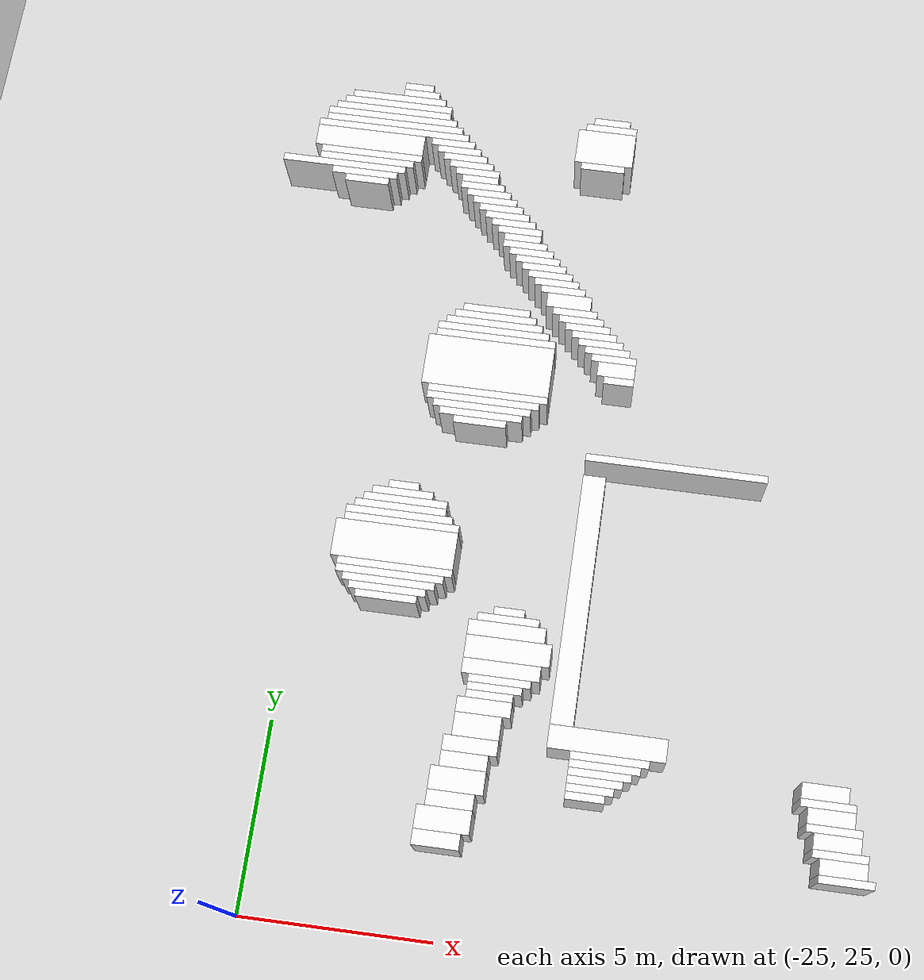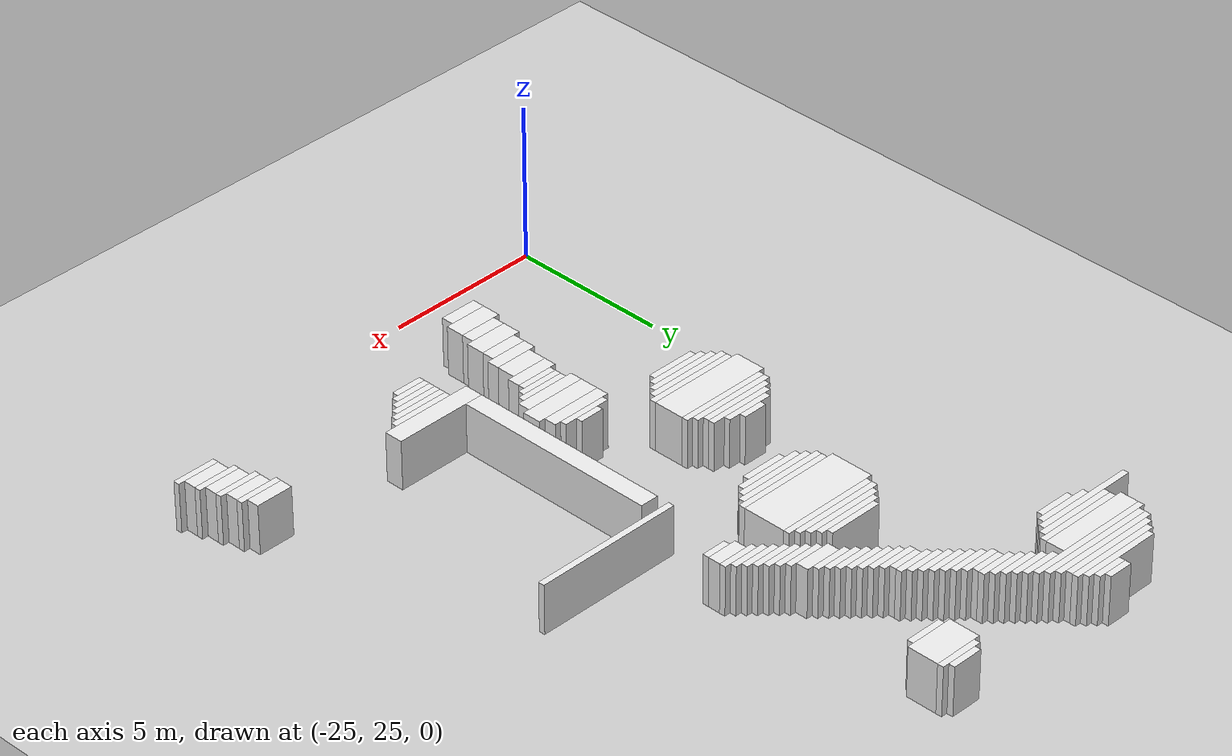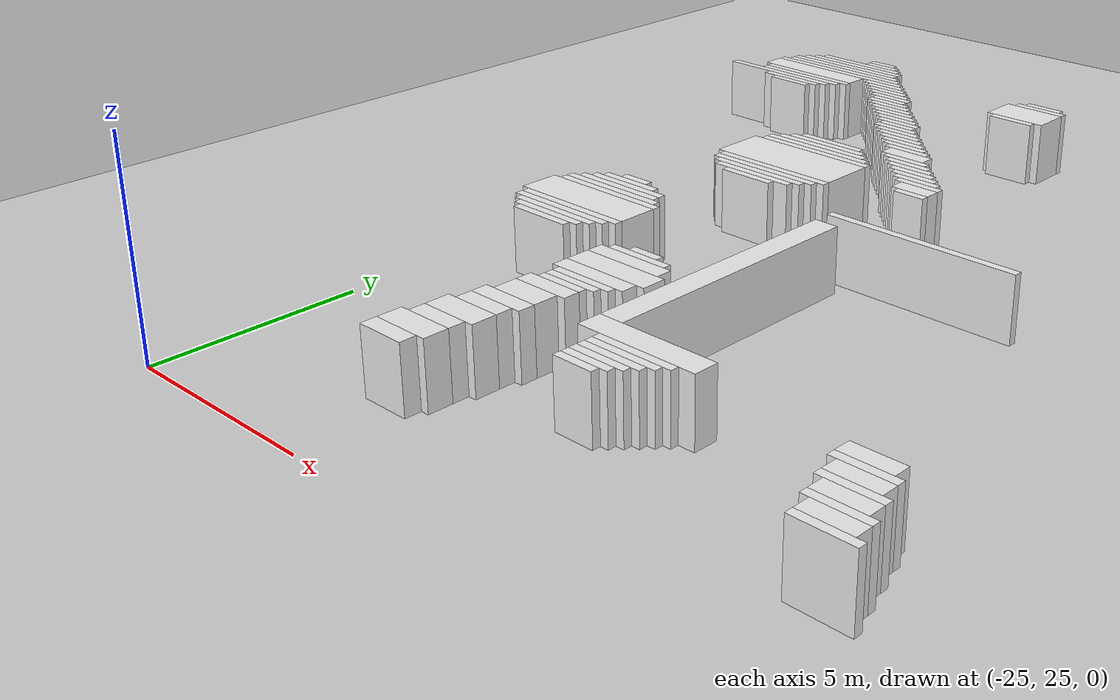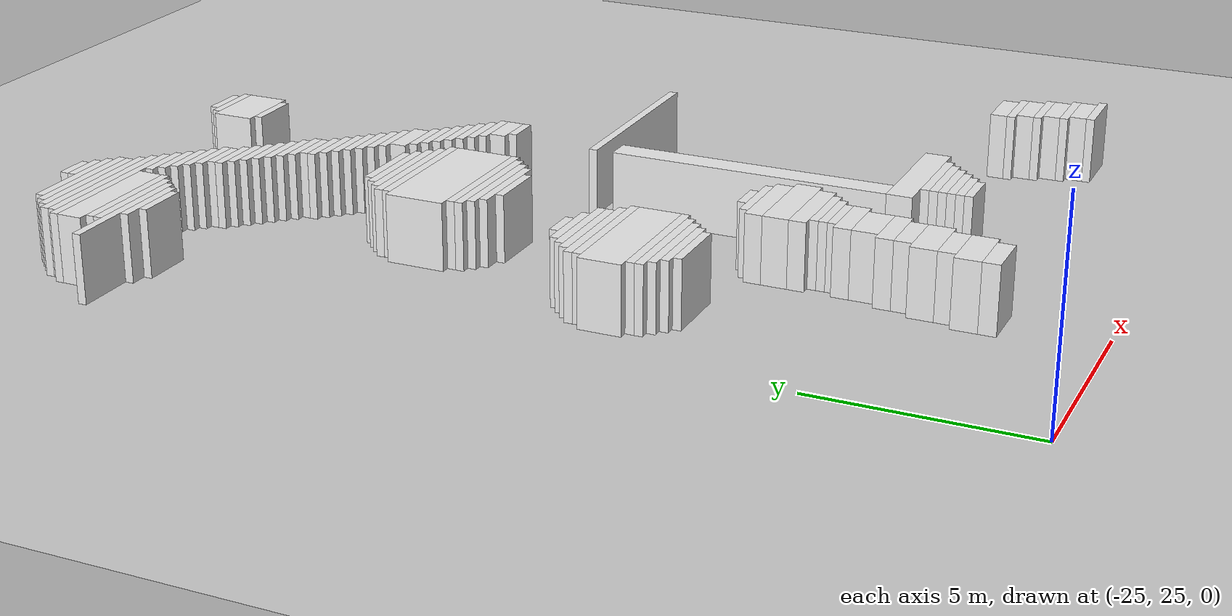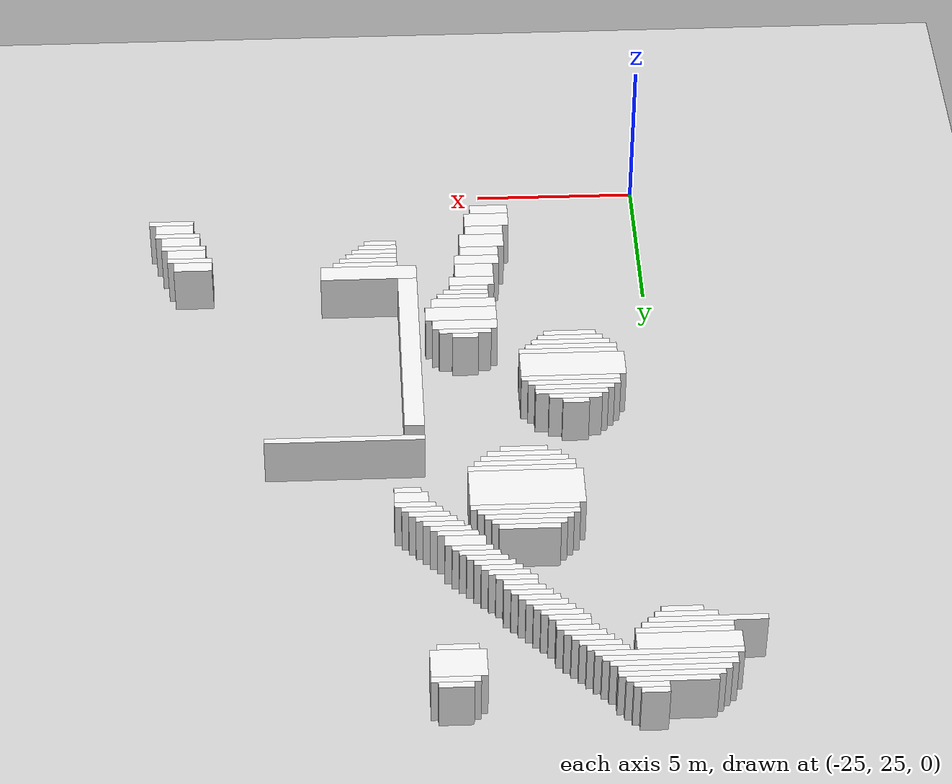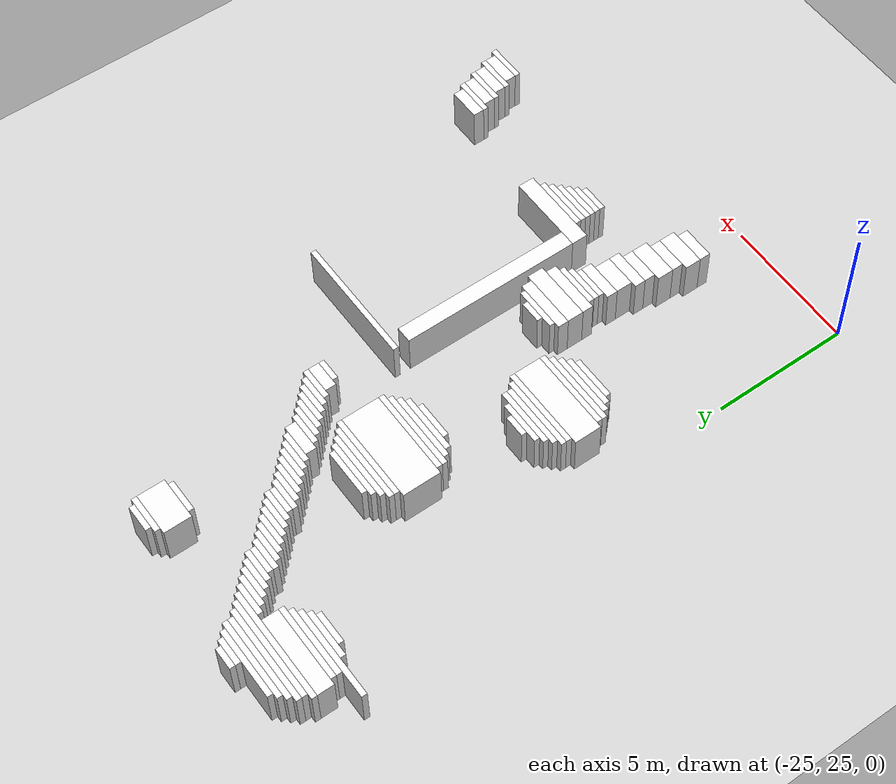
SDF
<sdf version="1.7">
 <world name="default">
  <model name="ground_plane">
   <static>1</static>
   <link name="link">
    <collision name="collision">
     <geometry><plane><normal>0 0 1</normal><size>120 120</size></plane></geometry>
    </collision>
    <visual name="visual">
     <geometry><plane><normal>0 0 1</normal><size>120 120</size></plane></geometry>
     <material>
      <script><uri>file://media/materials/scripts/gazebo.material</uri><name>Gazebo/Grey</name></script>
     </material>
    </visual>
   </link>
  </model>
  <model name="random_complex_02_model">
   <static>1</static>
   <link name="obs_13">
    <pose>-23.8000 47.9000 0.8000 0 0 0</pose>
    <collision name="obs_13_col"><geometry><box><size>0.8000 0.2000 1.6000</size></box></geometry></collision>
    <visual name="obs_13_vis">
     <geometry><box><size>0.8000 0.2000 1.6000</size></box></geometry>
     <material>
      <script><uri>file://media/materials/scripts/gazebo.material</uri><name>Gazebo/White</name></script>
     </material>
    </visual>
   </link>
   <link name="obs_20">
    <pose>-23.7000 47.7000 0.8000 0 0 0</pose>
    <collision name="obs_20_col"><geometry><box><size>1.0000 0.2000 1.6000</size></box></geometry></collision>
    <visual name="obs_20_vis">
     <geometry><box><size>1.0000 0.2000 1.6000</size></box></geometry>
     <material>
      <script><uri>file://media/materials/scripts/gazebo.material</uri><name>Gazebo/White</name></script>
     </material>
    </visual>
   </link>
   <link name="obs_27">
    <pose>-24.3000 47.5000 0.8000 0 0 0</pose>
    <collision name="obs_27_col"><geometry><box><size>2.6000 0.2000 1.6000</size></box></geometry></collision>
    <visual name="obs_27_vis">
     <geometry><box><size>2.6000 0.2000 1.6000</size></box></geometry>
     <material>
      <script><uri>file://media/materials/scripts/gazebo.material</uri><name>Gazebo/White</name></script>
     </material>
    </visual>
   </link>
   <link name="obs_28">
    <pose>-18.3000 47.5000 0.8000 0 0 0</pose>
    <collision name="obs_28_col"><geometry><box><size>1.0000 0.2000 1.6000</size></box></geometry></collision>
    <visual name="obs_28_vis">
     <geometry><box><size>1.0000 0.2000 1.6000</size></box></geometry>
     <material>
      <script><uri>file://media/materials/scripts/gazebo.material</uri><name>Gazebo/White</name></script>
     </material>
    </visual>
   </link>
   <link name="obs_34">
    <pose>-24.3000 47.3000 0.8000 0 0 0</pose>
    <collision name="obs_34_col"><geometry><box><size>3.0000 0.2000 1.6000</size></box></geometry></collision>
    <visual name="obs_34_vis">
     <geometry><box><size>3.0000 0.2000 1.6000</size></box></geometry>
     <material>
      <script><uri>file://media/materials/scripts/gazebo.material</uri><name>Gazebo/White</name></script>
     </material>
    </visual>
   </link>
   <link name="obs_35">
    <pose>-18.3000 47.3000 0.8000 0 0 0</pose>
    <collision name="obs_35_col"><geometry><box><size>1.4000 0.2000 1.6000</size></box></geometry></collision>
    <visual name="obs_35_vis">
     <geometry><box><size>1.4000 0.2000 1.6000</size></box></geometry>
     <material>
      <script><uri>file://media/materials/scripts/gazebo.material</uri><name>Gazebo/White</name></script>
     </material>
    </visual>
   </link>
   <link name="obs_42">
    <pose>-24.4000 47.1000 0.8000 0 0 0</pose>
    <collision name="obs_42_col"><geometry><box><size>3.2000 0.2000 1.6000</size></box></geometry></collision>
    <visual name="obs_42_vis">
     <geometry><box><size>3.2000 0.2000 1.6000</size></box></geometry>
     <material>
      <script><uri>file://media/materials/scripts/gazebo.material</uri><name>Gazebo/White</name></script>
     </material>
    </visual>
   </link>
   <link name="obs_48">
    <pose>-24.4000 46.9000 0.8000 0 0 0</pose>
    <collision name="obs_48_col"><geometry><box><size>3.6000 0.2000 1.6000</size></box></geometry></collision>
    <visual name="obs_48_vis">
     <geometry><box><size>3.6000 0.2000 1.6000</size></box></geometry>
     <material>
      <script><uri>file://media/materials/scripts/gazebo.material</uri><name>Gazebo/White</name></script>
     </material>
    </visual>
   </link>
   <link name="obs_55">
    <pose>-24.3000 46.7000 0.8000 0 0 0</pose>
    <collision name="obs_55_col"><geometry><box><size>3.8000 0.2000 1.6000</size></box></geometry></collision>
    <visual name="obs_55_vis">
     <geometry><box><size>3.8000 0.2000 1.6000</size></box></geometry>
     <material>
      <script><uri>file://media/materials/scripts/gazebo.material</uri><name>Gazebo/White</name></script>
     </material>
    </visual>
   </link>
   <link name="obs_62">
    <pose>-24.3000 46.5000 0.8000 0 0 0</pose>
    <collision name="obs_62_col"><geometry><box><size>4.2000 0.2000 1.6000</size></box></geometry></collision>
    <visual name="obs_62_vis">
     <geometry><box><size>4.2000 0.2000 1.6000</size></box></geometry>
     <material>
      <script><uri>file://media/materials/scripts/gazebo.material</uri><name>Gazebo/White</name></script>
     </material>
    </visual>
   </link>
   <link name="obs_67">
    <pose>-18.4000 46.7000 0.8000 0 0 0</pose>
    <collision name="obs_67_col"><geometry><box><size>1.6000 1.0000 1.6000</size></box></geometry></collision>
    <visual name="obs_67_vis">
     <geometry><box><size>1.6000 1.0000 1.6000</size></box></geometry>
     <material>
      <script><uri>file://media/materials/scripts/gazebo.material</uri><name>Gazebo/White</name></script>
     </material>
    </visual>
   </link>
   <link name="obs_70">
    <pose>-22.6000 46.3000 0.8000 0 0 0</pose>
    <collision name="obs_70_col"><geometry><box><size>1.2000 0.2000 1.6000</size></box></geometry></collision>
    <visual name="obs_70_vis">
     <geometry><box><size>1.2000 0.2000 1.6000</size></box></geometry>
     <material>
      <script><uri>file://media/materials/scripts/gazebo.material</uri><name>Gazebo/White</name></script>
     </material>
    </visual>
   </link>
   <link name="obs_78">
    <pose>-22.4000 46.1000 0.8000 0 0 0</pose>
    <collision name="obs_78_col"><geometry><box><size>1.2000 0.2000 1.6000</size></box></geometry></collision>
    <visual name="obs_78_vis">
     <geometry><box><size>1.2000 0.2000 1.6000</size></box></geometry>
     <material>
      <script><uri>file://media/materials/scripts/gazebo.material</uri><name>Gazebo/White</name></script>
     </material>
    </visual>
   </link>
   <link name="obs_79">
    <pose>-18.4000 46.1000 0.8000 0 0 0</pose>
    <collision name="obs_79_col"><geometry><box><size>1.2000 0.2000 1.6000</size></box></geometry></collision>
    <visual name="obs_79_vis">
     <geometry><box><size>1.2000 0.2000 1.6000</size></box></geometry>
     <material>
      <script><uri>file://media/materials/scripts/gazebo.material</uri><name>Gazebo/White</name></script>
     </material>
    </visual>
   </link>
   <link name="obs_83">
    <pose>-24.9000 46.1000 0.8000 0 0 0</pose>
    <collision name="obs_83_col"><geometry><box><size>3.0000 0.6000 1.6000</size></box></geometry></collision>
    <visual name="obs_83_vis">
     <geometry><box><size>3.0000 0.6000 1.6000</size></box></geometry>
     <material>
      <script><uri>file://media/materials/scripts/gazebo.material</uri><name>Gazebo/White</name></script>
     </material>
    </visual>
   </link>
   <link name="obs_87">
    <pose>-22.2000 45.9000 0.8000 0 0 0</pose>
    <collision name="obs_87_col"><geometry><box><size>1.2000 0.2000 1.6000</size></box></geometry></collision>
    <visual name="obs_87_vis">
     <geometry><box><size>1.2000 0.2000 1.6000</size></box></geometry>
     <material>
      <script><uri>file://media/materials/scripts/gazebo.material</uri><name>Gazebo/White</name></script>
     </material>
    </visual>
   </link>
   <link name="obs_93">
    <pose>-24.8000 45.7000 0.8000 0 0 0</pose>
    <collision name="obs_93_col"><geometry><box><size>2.8000 0.2000 1.6000</size></box></geometry></collision>
    <visual name="obs_93_vis">
     <geometry><box><size>2.8000 0.2000 1.6000</size></box></geometry>
     <material>
      <script><uri>file://media/materials/scripts/gazebo.material</uri><name>Gazebo/White</name></script>
     </material>
    </visual>
   </link>
   <link name="obs_94">
    <pose>-22.0000 45.7000 0.8000 0 0 0</pose>
    <collision name="obs_94_col"><geometry><box><size>1.2000 0.2000 1.6000</size></box></geometry></collision>
    <visual name="obs_94_vis">
     <geometry><box><size>1.2000 0.2000 1.6000</size></box></geometry>
     <material>
      <script><uri>file://media/materials/scripts/gazebo.material</uri><name>Gazebo/White</name></script>
     </material>
    </visual>
   </link>
   <link name="obs_100">
    <pose>-24.9000 45.5000 0.8000 0 0 0</pose>
    <collision name="obs_100_col"><geometry><box><size>2.6000 0.2000 1.6000</size></box></geometry></collision>
    <visual name="obs_100_vis">
     <geometry><box><size>2.6000 0.2000 1.6000</size></box></geometry>
     <material>
      <script><uri>file://media/materials/scripts/gazebo.material</uri><name>Gazebo/White</name></script>
     </material>
    </visual>
   </link>
   <link name="obs_101">
    <pose>-21.8000 45.5000 0.8000 0 0 0</pose>
    <collision name="obs_101_col"><geometry><box><size>1.2000 0.2000 1.6000</size></box></geometry></collision>
    <visual name="obs_101_vis">
     <geometry><box><size>1.2000 0.2000 1.6000</size></box></geometry>
     <material>
      <script><uri>file://media/materials/scripts/gazebo.material</uri><name>Gazebo/White</name></script>
     </material>
    </visual>
   </link>
   <link name="obs_109">
    <pose>-25.5000 45.3000 0.8000 0 0 0</pose>
    <collision name="obs_109_col"><geometry><box><size>3.4000 0.2000 1.6000</size></box></geometry></collision>
    <visual name="obs_109_vis">
     <geometry><box><size>3.4000 0.2000 1.6000</size></box></geometry>
     <material>
      <script><uri>file://media/materials/scripts/gazebo.material</uri><name>Gazebo/White</name></script>
     </material>
    </visual>
   </link>
   <link name="obs_110">
    <pose>-21.7000 45.3000 0.8000 0 0 0</pose>
    <collision name="obs_110_col"><geometry><box><size>1.0000 0.2000 1.6000</size></box></geometry></collision>
    <visual name="obs_110_vis">
     <geometry><box><size>1.0000 0.2000 1.6000</size></box></geometry>
     <material>
      <script><uri>file://media/materials/scripts/gazebo.material</uri><name>Gazebo/White</name></script>
     </material>
    </visual>
   </link>
   <link name="obs_120">
    <pose>-24.9000 45.1000 0.8000 0 0 0</pose>
    <collision name="obs_120_col"><geometry><box><size>1.8000 0.2000 1.6000</size></box></geometry></collision>
    <visual name="obs_120_vis">
     <geometry><box><size>1.8000 0.2000 1.6000</size></box></geometry>
     <material>
      <script><uri>file://media/materials/scripts/gazebo.material</uri><name>Gazebo/White</name></script>
     </material>
    </visual>
   </link>
   <link name="obs_121">
    <pose>-21.6000 45.1000 0.8000 0 0 0</pose>
    <collision name="obs_121_col"><geometry><box><size>1.2000 0.2000 1.6000</size></box></geometry></collision>
    <visual name="obs_121_vis">
     <geometry><box><size>1.2000 0.2000 1.6000</size></box></geometry>
     <material>
      <script><uri>file://media/materials/scripts/gazebo.material</uri><name>Gazebo/White</name></script>
     </material>
    </visual>
   </link>
   <link name="obs_129">
    <pose>-24.8000 44.9000 0.8000 0 0 0</pose>
    <collision name="obs_129_col"><geometry><box><size>1.2000 0.2000 1.6000</size></box></geometry></collision>
    <visual name="obs_129_vis">
     <geometry><box><size>1.2000 0.2000 1.6000</size></box></geometry>
     <material>
      <script><uri>file://media/materials/scripts/gazebo.material</uri><name>Gazebo/White</name></script>
     </material>
    </visual>
   </link>
   <link name="obs_130">
    <pose>-21.4000 44.9000 0.8000 0 0 0</pose>
    <collision name="obs_130_col"><geometry><box><size>1.2000 0.2000 1.6000</size></box></geometry></collision>
    <visual name="obs_130_vis">
     <geometry><box><size>1.2000 0.2000 1.6000</size></box></geometry>
     <material>
      <script><uri>file://media/materials/scripts/gazebo.material</uri><name>Gazebo/White</name></script>
     </material>
    </visual>
   </link>
   <link name="obs_138">
    <pose>-21.2000 44.7000 0.8000 0 0 0</pose>
    <collision name="obs_138_col"><geometry><box><size>1.2000 0.2000 1.6000</size></box></geometry></collision>
    <visual name="obs_138_vis">
     <geometry><box><size>1.2000 0.2000 1.6000</size></box></geometry>
     <material>
      <script><uri>file://media/materials/scripts/gazebo.material</uri><name>Gazebo/White</name></script>
     </material>
    </visual>
   </link>
   <link name="obs_146">
    <pose>-21.0000 44.5000 0.8000 0 0 0</pose>
    <collision name="obs_146_col"><geometry><box><size>1.2000 0.2000 1.6000</size></box></geometry></collision>
    <visual name="obs_146_vis">
     <geometry><box><size>1.2000 0.2000 1.6000</size></box></geometry>
     <material>
      <script><uri>file://media/materials/scripts/gazebo.material</uri><name>Gazebo/White</name></script>
     </material>
    </visual>
   </link>
   <link name="obs_153">
    <pose>-20.8000 44.3000 0.8000 0 0 0</pose>
    <collision name="obs_153_col"><geometry><box><size>1.2000 0.2000 1.6000</size></box></geometry></collision>
    <visual name="obs_153_vis">
     <geometry><box><size>1.2000 0.2000 1.6000</size></box></geometry>
     <material>
      <script><uri>file://media/materials/scripts/gazebo.material</uri><name>Gazebo/White</name></script>
     </material>
    </visual>
   </link>
   <link name="obs_162">
    <pose>-20.6000 44.1000 0.8000 0 0 0</pose>
    <collision name="obs_162_col"><geometry><box><size>1.2000 0.2000 1.6000</size></box></geometry></collision>
    <visual name="obs_162_vis">
     <geometry><box><size>1.2000 0.2000 1.6000</size></box></geometry>
     <material>
      <script><uri>file://media/materials/scripts/gazebo.material</uri><name>Gazebo/White</name></script>
     </material>
    </visual>
   </link>
   <link name="obs_170">
    <pose>-20.4000 43.9000 0.8000 0 0 0</pose>
    <collision name="obs_170_col"><geometry><box><size>1.2000 0.2000 1.6000</size></box></geometry></collision>
    <visual name="obs_170_vis">
     <geometry><box><size>1.2000 0.2000 1.6000</size></box></geometry>
     <material>
      <script><uri>file://media/materials/scripts/gazebo.material</uri><name>Gazebo/White</name></script>
     </material>
    </visual>
   </link>
   <link name="obs_177">
    <pose>-20.3000 43.7000 0.8000 0 0 0</pose>
    <collision name="obs_177_col"><geometry><box><size>1.0000 0.2000 1.6000</size></box></geometry></collision>
    <visual name="obs_177_vis">
     <geometry><box><size>1.0000 0.2000 1.6000</size></box></geometry>
     <material>
      <script><uri>file://media/materials/scripts/gazebo.material</uri><name>Gazebo/White</name></script>
     </material>
    </visual>
   </link>
   <link name="obs_182">
    <pose>-20.2000 43.5000 0.8000 0 0 0</pose>
    <collision name="obs_182_col"><geometry><box><size>1.2000 0.2000 1.6000</size></box></geometry></collision>
    <visual name="obs_182_vis">
     <geometry><box><size>1.2000 0.2000 1.6000</size></box></geometry>
     <material>
      <script><uri>file://media/materials/scripts/gazebo.material</uri><name>Gazebo/White</name></script>
     </material>
    </visual>
   </link>
   <link name="obs_189">
    <pose>-20.0000 43.3000 0.8000 0 0 0</pose>
    <collision name="obs_189_col"><geometry><box><size>1.2000 0.2000 1.6000</size></box></geometry></collision>
    <visual name="obs_189_vis">
     <geometry><box><size>1.2000 0.2000 1.6000</size></box></geometry>
     <material>
      <script><uri>file://media/materials/scripts/gazebo.material</uri><name>Gazebo/White</name></script>
     </material>
    </visual>
   </link>
   <link name="obs_197">
    <pose>-19.8000 43.1000 0.8000 0 0 0</pose>
    <collision name="obs_197_col"><geometry><box><size>1.2000 0.2000 1.6000</size></box></geometry></collision>
    <visual name="obs_197_vis">
     <geometry><box><size>1.2000 0.2000 1.6000</size></box></geometry>
     <material>
      <script><uri>file://media/materials/scripts/gazebo.material</uri><name>Gazebo/White</name></script>
     </material>
    </visual>
   </link>
   <link name="obs_204">
    <pose>-19.6000 42.9000 0.8000 0 0 0</pose>
    <collision name="obs_204_col"><geometry><box><size>1.2000 0.2000 1.6000</size></box></geometry></collision>
    <visual name="obs_204_vis">
     <geometry><box><size>1.2000 0.2000 1.6000</size></box></geometry>
     <material>
      <script><uri>file://media/materials/scripts/gazebo.material</uri><name>Gazebo/White</name></script>
     </material>
    </visual>
   </link>
   <link name="obs_211">
    <pose>-19.4000 42.7000 0.8000 0 0 0</pose>
    <collision name="obs_211_col"><geometry><box><size>1.2000 0.2000 1.6000</size></box></geometry></collision>
    <visual name="obs_211_vis">
     <geometry><box><size>1.2000 0.2000 1.6000</size></box></geometry>
     <material>
      <script><uri>file://media/materials/scripts/gazebo.material</uri><name>Gazebo/White</name></script>
     </material>
    </visual>
   </link>
   <link name="obs_219">
    <pose>-19.2000 42.5000 0.8000 0 0 0</pose>
    <collision name="obs_219_col"><geometry><box><size>1.2000 0.2000 1.6000</size></box></geometry></collision>
    <visual name="obs_219_vis">
     <geometry><box><size>1.2000 0.2000 1.6000</size></box></geometry>
     <material>
      <script><uri>file://media/materials/scripts/gazebo.material</uri><name>Gazebo/White</name></script>
     </material>
    </visual>
   </link>
   <link name="obs_224">
    <pose>-19.0000 42.3000 0.8000 0 0 0</pose>
    <collision name="obs_224_col"><geometry><box><size>1.2000 0.2000 1.6000</size></box></geometry></collision>
    <visual name="obs_224_vis">
     <geometry><box><size>1.2000 0.2000 1.6000</size></box></geometry>
     <material>
      <script><uri>file://media/materials/scripts/gazebo.material</uri><name>Gazebo/White</name></script>
     </material>
    </visual>
   </link>
   <link name="obs_235">
    <pose>-18.8000 42.0000 0.8000 0 0 0</pose>
    <collision name="obs_235_col"><geometry><box><size>1.2000 0.4000 1.6000</size></box></geometry></collision>
    <visual name="obs_235_vis">
     <geometry><box><size>1.2000 0.4000 1.6000</size></box></geometry>
     <material>
      <script><uri>file://media/materials/scripts/gazebo.material</uri><name>Gazebo/White</name></script>
     </material>
    </visual>
   </link>
   <link name="obs_244">
    <pose>-18.6000 41.7000 0.8000 0 0 0</pose>
    <collision name="obs_244_col"><geometry><box><size>1.2000 0.2000 1.6000</size></box></geometry></collision>
    <visual name="obs_244_vis">
     <geometry><box><size>1.2000 0.2000 1.6000</size></box></geometry>
     <material>
      <script><uri>file://media/materials/scripts/gazebo.material</uri><name>Gazebo/White</name></script>
     </material>
    </visual>
   </link>
   <link name="obs_255">
    <pose>-20.7000 41.5000 0.8000 0 0 0</pose>
    <collision name="obs_255_col"><geometry><box><size>1.8000 0.2000 1.6000</size></box></geometry></collision>
    <visual name="obs_255_vis">
     <geometry><box><size>1.8000 0.2000 1.6000</size></box></geometry>
     <material>
      <script><uri>file://media/materials/scripts/gazebo.material</uri><name>Gazebo/White</name></script>
     </material>
    </visual>
   </link>
   <link name="obs_256">
    <pose>-18.4000 41.5000 0.8000 0 0 0</pose>
    <collision name="obs_256_col"><geometry><box><size>1.2000 0.2000 1.6000</size></box></geometry></collision>
    <visual name="obs_256_vis">
     <geometry><box><size>1.2000 0.2000 1.6000</size></box></geometry>
     <material>
      <script><uri>file://media/materials/scripts/gazebo.material</uri><name>Gazebo/White</name></script>
     </material>
    </visual>
   </link>
   <link name="obs_264">
    <pose>-20.7000 41.3000 0.8000 0 0 0</pose>
    <collision name="obs_264_col"><geometry><box><size>2.2000 0.2000 1.6000</size></box></geometry></collision>
    <visual name="obs_264_vis">
     <geometry><box><size>2.2000 0.2000 1.6000</size></box></geometry>
     <material>
      <script><uri>file://media/materials/scripts/gazebo.material</uri><name>Gazebo/White</name></script>
     </material>
    </visual>
   </link>
   <link name="obs_265">
    <pose>-18.2000 41.3000 0.8000 0 0 0</pose>
    <collision name="obs_265_col"><geometry><box><size>1.2000 0.2000 1.6000</size></box></geometry></collision>
    <visual name="obs_265_vis">
     <geometry><box><size>1.2000 0.2000 1.6000</size></box></geometry>
     <material>
      <script><uri>file://media/materials/scripts/gazebo.material</uri><name>Gazebo/White</name></script>
     </material>
    </visual>
   </link>
   <link name="obs_272">
    <pose>-20.7000 41.1000 0.8000 0 0 0</pose>
    <collision name="obs_272_col"><geometry><box><size>2.6000 0.2000 1.6000</size></box></geometry></collision>
    <visual name="obs_272_vis">
     <geometry><box><size>2.6000 0.2000 1.6000</size></box></geometry>
     <material>
      <script><uri>file://media/materials/scripts/gazebo.material</uri><name>Gazebo/White</name></script>
     </material>
    </visual>
   </link>
   <link name="obs_273">
    <pose>-18.0000 41.1000 0.8000 0 0 0</pose>
    <collision name="obs_273_col"><geometry><box><size>1.2000 0.2000 1.6000</size></box></geometry></collision>
    <visual name="obs_273_vis">
     <geometry><box><size>1.2000 0.2000 1.6000</size></box></geometry>
     <material>
      <script><uri>file://media/materials/scripts/gazebo.material</uri><name>Gazebo/White</name></script>
     </material>
    </visual>
   </link>
   <link name="obs_281">
    <pose>-20.7000 40.9000 0.8000 0 0 0</pose>
    <collision name="obs_281_col"><geometry><box><size>3.0000 0.2000 1.6000</size></box></geometry></collision>
    <visual name="obs_281_vis">
     <geometry><box><size>3.0000 0.2000 1.6000</size></box></geometry>
     <material>
      <script><uri>file://media/materials/scripts/gazebo.material</uri><name>Gazebo/White</name></script>
     </material>
    </visual>
   </link>
   <link name="obs_282">
    <pose>-17.8000 40.9000 0.8000 0 0 0</pose>
    <collision name="obs_282_col"><geometry><box><size>1.2000 0.2000 1.6000</size></box></geometry></collision>
    <visual name="obs_282_vis">
     <geometry><box><size>1.2000 0.2000 1.6000</size></box></geometry>
     <material>
      <script><uri>file://media/materials/scripts/gazebo.material</uri><name>Gazebo/White</name></script>
     </material>
    </visual>
   </link>
   <link name="obs_291">
    <pose>-20.6000 40.7000 0.8000 0 0 0</pose>
    <collision name="obs_291_col"><geometry><box><size>3.2000 0.2000 1.6000</size></box></geometry></collision>
    <visual name="obs_291_vis">
     <geometry><box><size>3.2000 0.2000 1.6000</size></box></geometry>
     <material>
      <script><uri>file://media/materials/scripts/gazebo.material</uri><name>Gazebo/White</name></script>
     </material>
    </visual>
   </link>
   <link name="obs_292">
    <pose>-17.6000 40.7000 0.8000 0 0 0</pose>
    <collision name="obs_292_col"><geometry><box><size>1.2000 0.2000 1.6000</size></box></geometry></collision>
    <visual name="obs_292_vis">
     <geometry><box><size>1.2000 0.2000 1.6000</size></box></geometry>
     <material>
      <script><uri>file://media/materials/scripts/gazebo.material</uri><name>Gazebo/White</name></script>
     </material>
    </visual>
   </link>
   <link name="obs_302">
    <pose>-17.4000 40.5000 0.8000 0 0 0</pose>
    <collision name="obs_302_col"><geometry><box><size>1.2000 0.2000 1.6000</size></box></geometry></collision>
    <visual name="obs_302_vis">
     <geometry><box><size>1.2000 0.2000 1.6000</size></box></geometry>
     <material>
      <script><uri>file://media/materials/scripts/gazebo.material</uri><name>Gazebo/White</name></script>
     </material>
    </visual>
   </link>
   <link name="obs_320">
    <pose>-17.3000 40.2000 0.8000 0 0 0</pose>
    <collision name="obs_320_col"><geometry><box><size>1.0000 0.4000 1.6000</size></box></geometry></collision>
    <visual name="obs_320_vis">
     <geometry><box><size>1.0000 0.4000 1.6000</size></box></geometry>
     <material>
      <script><uri>file://media/materials/scripts/gazebo.material</uri><name>Gazebo/White</name></script>
     </material>
    </visual>
   </link>
   <link name="obs_333">
    <pose>-17.2000 39.9000 0.8000 0 0 0</pose>
    <collision name="obs_333_col"><geometry><box><size>0.8000 0.2000 1.6000</size></box></geometry></collision>
    <visual name="obs_333_vis">
     <geometry><box><size>0.8000 0.2000 1.6000</size></box></geometry>
     <material>
      <script><uri>file://media/materials/scripts/gazebo.material</uri><name>Gazebo/White</name></script>
     </material>
    </visual>
   </link>
   <link name="obs_351">
    <pose>-20.7000 39.9000 0.8000 0 0 0</pose>
    <collision name="obs_351_col"><geometry><box><size>3.4000 1.4000 1.6000</size></box></geometry></collision>
    <visual name="obs_351_vis">
     <geometry><box><size>3.4000 1.4000 1.6000</size></box></geometry>
     <material>
      <script><uri>file://media/materials/scripts/gazebo.material</uri><name>Gazebo/White</name></script>
     </material>
    </visual>
   </link>
   <link name="obs_364">
    <pose>-20.6000 39.1000 0.8000 0 0 0</pose>
    <collision name="obs_364_col"><geometry><box><size>3.2000 0.2000 1.6000</size></box></geometry></collision>
    <visual name="obs_364_vis">
     <geometry><box><size>3.2000 0.2000 1.6000</size></box></geometry>
     <material>
      <script><uri>file://media/materials/scripts/gazebo.material</uri><name>Gazebo/White</name></script>
     </material>
    </visual>
   </link>
   <link name="obs_374">
    <pose>-20.7000 38.9000 0.8000 0 0 0</pose>
    <collision name="obs_374_col"><geometry><box><size>3.0000 0.2000 1.6000</size></box></geometry></collision>
    <visual name="obs_374_vis">
     <geometry><box><size>3.0000 0.2000 1.6000</size></box></geometry>
     <material>
      <script><uri>file://media/materials/scripts/gazebo.material</uri><name>Gazebo/White</name></script>
     </material>
    </visual>
   </link>
   <link name="obs_383">
    <pose>-20.7000 38.7000 0.8000 0 0 0</pose>
    <collision name="obs_383_col"><geometry><box><size>2.6000 0.2000 1.6000</size></box></geometry></collision>
    <visual name="obs_383_vis">
     <geometry><box><size>2.6000 0.2000 1.6000</size></box></geometry>
     <material>
      <script><uri>file://media/materials/scripts/gazebo.material</uri><name>Gazebo/White</name></script>
     </material>
    </visual>
   </link>
   <link name="obs_392">
    <pose>-20.7000 38.5000 0.8000 0 0 0</pose>
    <collision name="obs_392_col"><geometry><box><size>2.2000 0.2000 1.6000</size></box></geometry></collision>
    <visual name="obs_392_vis">
     <geometry><box><size>2.2000 0.2000 1.6000</size></box></geometry>
     <material>
      <script><uri>file://media/materials/scripts/gazebo.material</uri><name>Gazebo/White</name></script>
     </material>
    </visual>
   </link>
   <link name="obs_404">
    <pose>-20.7000 38.3000 0.8000 0 0 0</pose>
    <collision name="obs_404_col"><geometry><box><size>1.4000 0.2000 1.6000</size></box></geometry></collision>
    <visual name="obs_404_vis">
     <geometry><box><size>1.4000 0.2000 1.6000</size></box></geometry>
     <material>
      <script><uri>file://media/materials/scripts/gazebo.material</uri><name>Gazebo/White</name></script>
     </material>
    </visual>
   </link>
   <link name="obs_431">
    <pose>-15.4000 37.7000 0.8000 0 0 0</pose>
    <collision name="obs_431_col"><geometry><box><size>4.8000 0.2000 1.6000</size></box></geometry></collision>
    <visual name="obs_431_vis">
     <geometry><box><size>4.8000 0.2000 1.6000</size></box></geometry>
     <material>
      <script><uri>file://media/materials/scripts/gazebo.material</uri><name>Gazebo/White</name></script>
     </material>
    </visual>
   </link>
   <link name="obs_482">
    <pose>-22.4000 36.3000 0.8000 0 0 0</pose>
    <collision name="obs_482_col"><geometry><box><size>0.8000 0.2000 1.6000</size></box></geometry></collision>
    <visual name="obs_482_vis">
     <geometry><box><size>0.8000 0.2000 1.6000</size></box></geometry>
     <material>
      <script><uri>file://media/materials/scripts/gazebo.material</uri><name>Gazebo/White</name></script>
     </material>
    </visual>
   </link>
   <link name="obs_492">
    <pose>-22.4000 36.1000 0.8000 0 0 0</pose>
    <collision name="obs_492_col"><geometry><box><size>1.6000 0.2000 1.6000</size></box></geometry></collision>
    <visual name="obs_492_vis">
     <geometry><box><size>1.6000 0.2000 1.6000</size></box></geometry>
     <material>
      <script><uri>file://media/materials/scripts/gazebo.material</uri><name>Gazebo/White</name></script>
     </material>
    </visual>
   </link>
   <link name="obs_502">
    <pose>-22.3000 35.9000 0.8000 0 0 0</pose>
    <collision name="obs_502_col"><geometry><box><size>2.2000 0.2000 1.6000</size></box></geometry></collision>
    <visual name="obs_502_vis">
     <geometry><box><size>2.2000 0.2000 1.6000</size></box></geometry>
     <material>
      <script><uri>file://media/materials/scripts/gazebo.material</uri><name>Gazebo/White</name></script>
     </material>
    </visual>
   </link>
   <link name="obs_513">
    <pose>-22.4000 35.7000 0.8000 0 0 0</pose>
    <collision name="obs_513_col"><geometry><box><size>2.4000 0.2000 1.6000</size></box></geometry></collision>
    <visual name="obs_513_vis">
     <geometry><box><size>2.4000 0.2000 1.6000</size></box></geometry>
     <material>
      <script><uri>file://media/materials/scripts/gazebo.material</uri><name>Gazebo/White</name></script>
     </material>
    </visual>
   </link>
   <link name="obs_519">
    <pose>-22.4000 35.5000 0.8000 0 0 0</pose>
    <collision name="obs_519_col"><geometry><box><size>2.8000 0.2000 1.6000</size></box></geometry></collision>
    <visual name="obs_519_vis">
     <geometry><box><size>2.8000 0.2000 1.6000</size></box></geometry>
     <material>
      <script><uri>file://media/materials/scripts/gazebo.material</uri><name>Gazebo/White</name></script>
     </material>
    </visual>
   </link>
   <link name="obs_530">
    <pose>-22.3000 35.3000 0.8000 0 0 0</pose>
    <collision name="obs_530_col"><geometry><box><size>3.0000 0.2000 1.6000</size></box></geometry></collision>
    <visual name="obs_530_vis">
     <geometry><box><size>3.0000 0.2000 1.6000</size></box></geometry>
     <material>
      <script><uri>file://media/materials/scripts/gazebo.material</uri><name>Gazebo/White</name></script>
     </material>
    </visual>
   </link>
   <link name="obs_571">
    <pose>-22.4000 34.7000 0.8000 0 0 0</pose>
    <collision name="obs_571_col"><geometry><box><size>3.2000 1.0000 1.6000</size></box></geometry></collision>
    <visual name="obs_571_vis">
     <geometry><box><size>3.2000 1.0000 1.6000</size></box></geometry>
     <material>
      <script><uri>file://media/materials/scripts/gazebo.material</uri><name>Gazebo/White</name></script>
     </material>
    </visual>
   </link>
   <link name="obs_582">
    <pose>-22.3000 34.1000 0.8000 0 0 0</pose>
    <collision name="obs_582_col"><geometry><box><size>3.0000 0.2000 1.6000</size></box></geometry></collision>
    <visual name="obs_582_vis">
     <geometry><box><size>3.0000 0.2000 1.6000</size></box></geometry>
     <material>
      <script><uri>file://media/materials/scripts/gazebo.material</uri><name>Gazebo/White</name></script>
     </material>
    </visual>
   </link>
   <link name="obs_592">
    <pose>-22.4000 33.9000 0.8000 0 0 0</pose>
    <collision name="obs_592_col"><geometry><box><size>2.8000 0.2000 1.6000</size></box></geometry></collision>
    <visual name="obs_592_vis">
     <geometry><box><size>2.8000 0.2000 1.6000</size></box></geometry>
     <material>
      <script><uri>file://media/materials/scripts/gazebo.material</uri><name>Gazebo/White</name></script>
     </material>
    </visual>
   </link>
   <link name="obs_601">
    <pose>-22.4000 33.7000 0.8000 0 0 0</pose>
    <collision name="obs_601_col"><geometry><box><size>2.4000 0.2000 1.6000</size></box></geometry></collision>
    <visual name="obs_601_vis">
     <geometry><box><size>2.4000 0.2000 1.6000</size></box></geometry>
     <material>
      <script><uri>file://media/materials/scripts/gazebo.material</uri><name>Gazebo/White</name></script>
     </material>
    </visual>
   </link>
   <link name="obs_610">
    <pose>-22.4000 33.5000 0.8000 0 0 0</pose>
    <collision name="obs_610_col"><geometry><box><size>2.0000 0.2000 1.6000</size></box></geometry></collision>
    <visual name="obs_610_vis">
     <geometry><box><size>2.0000 0.2000 1.6000</size></box></geometry>
     <material>
      <script><uri>file://media/materials/scripts/gazebo.material</uri><name>Gazebo/White</name></script>
     </material>
    </visual>
   </link>
   <link name="obs_619">
    <pose>-22.4000 33.3000 0.8000 0 0 0</pose>
    <collision name="obs_619_col"><geometry><box><size>1.6000 0.2000 1.6000</size></box></geometry></collision>
    <visual name="obs_619_vis">
     <geometry><box><size>1.6000 0.2000 1.6000</size></box></geometry>
     <material>
      <script><uri>file://media/materials/scripts/gazebo.material</uri><name>Gazebo/White</name></script>
     </material>
    </visual>
   </link>
   <link name="obs_620">
    <pose>-19.2000 33.3000 0.8000 0 0 0</pose>
    <collision name="obs_620_col"><geometry><box><size>0.8000 0.2000 1.6000</size></box></geometry></collision>
    <visual name="obs_620_vis">
     <geometry><box><size>0.8000 0.2000 1.6000</size></box></geometry>
     <material>
      <script><uri>file://media/materials/scripts/gazebo.material</uri><name>Gazebo/White</name></script>
     </material>
    </visual>
   </link>
   <link name="obs_630">
    <pose>-19.2000 33.1000 0.8000 0 0 0</pose>
    <collision name="obs_630_col"><geometry><box><size>1.6000 0.2000 1.6000</size></box></geometry></collision>
    <visual name="obs_630_vis">
     <geometry><box><size>1.6000 0.2000 1.6000</size></box></geometry>
     <material>
      <script><uri>file://media/materials/scripts/gazebo.material</uri><name>Gazebo/White</name></script>
     </material>
    </visual>
   </link>
   <link name="obs_644">
    <pose>-19.2000 32.8000 0.8000 0 0 0</pose>
    <collision name="obs_644_col"><geometry><box><size>2.0000 0.4000 1.6000</size></box></geometry></collision>
    <visual name="obs_644_vis">
     <geometry><box><size>2.0000 0.4000 1.6000</size></box></geometry>
     <material>
      <script><uri>file://media/materials/scripts/gazebo.material</uri><name>Gazebo/White</name></script>
     </material>
    </visual>
   </link>
   <link name="obs_669">
    <pose>-19.1000 32.3000 0.8000 0 0 0</pose>
    <collision name="obs_669_col"><geometry><box><size>2.2000 0.6000 1.6000</size></box></geometry></collision>
    <visual name="obs_669_vis">
     <geometry><box><size>2.2000 0.6000 1.6000</size></box></geometry>
     <material>
      <script><uri>file://media/materials/scripts/gazebo.material</uri><name>Gazebo/White</name></script>
     </material>
    </visual>
   </link>
   <link name="obs_688">
    <pose>-19.2000 31.8000 0.8000 0 0 0</pose>
    <collision name="obs_688_col"><geometry><box><size>2.0000 0.4000 1.6000</size></box></geometry></collision>
    <visual name="obs_688_vis">
     <geometry><box><size>2.0000 0.4000 1.6000</size></box></geometry>
     <material>
      <script><uri>file://media/materials/scripts/gazebo.material</uri><name>Gazebo/White</name></script>
     </material>
    </visual>
   </link>
   <link name="obs_702">
    <pose>-19.2000 31.5000 0.8000 0 0 0</pose>
    <collision name="obs_702_col"><geometry><box><size>1.6000 0.2000 1.6000</size></box></geometry></collision>
    <visual name="obs_702_vis">
     <geometry><box><size>1.6000 0.2000 1.6000</size></box></geometry>
     <material>
      <script><uri>file://media/materials/scripts/gazebo.material</uri><name>Gazebo/White</name></script>
     </material>
    </visual>
   </link>
   <link name="obs_711">
    <pose>-19.3000 31.3000 0.8000 0 0 0</pose>
    <collision name="obs_711_col"><geometry><box><size>1.4000 0.2000 1.6000</size></box></geometry></collision>
    <visual name="obs_711_vis">
     <geometry><box><size>1.4000 0.2000 1.6000</size></box></geometry>
     <material>
      <script><uri>file://media/materials/scripts/gazebo.material</uri><name>Gazebo/White</name></script>
     </material>
    </visual>
   </link>
   <link name="obs_724">
    <pose>-19.4000 31.1000 0.8000 0 0 0</pose>
    <collision name="obs_724_col"><geometry><box><size>1.2000 0.2000 1.6000</size></box></geometry></collision>
    <visual name="obs_724_vis">
     <geometry><box><size>1.2000 0.2000 1.6000</size></box></geometry>
     <material>
      <script><uri>file://media/materials/scripts/gazebo.material</uri><name>Gazebo/White</name></script>
     </material>
    </visual>
   </link>
   <link name="obs_739">
    <pose>-17.5000 33.9000 0.8000 0 0 0</pose>
    <collision name="obs_739_col"><geometry><box><size>0.6000 6.6000 1.6000</size></box></geometry></collision>
    <visual name="obs_739_vis">
     <geometry><box><size>0.6000 6.6000 1.6000</size></box></geometry>
     <material>
      <script><uri>file://media/materials/scripts/gazebo.material</uri><name>Gazebo/White</name></script>
     </material>
    </visual>
   </link>
   <link name="obs_741">
    <pose>-19.5000 30.8000 0.8000 0 0 0</pose>
    <collision name="obs_741_col"><geometry><box><size>1.4000 0.4000 1.6000</size></box></geometry></collision>
    <visual name="obs_741_vis">
     <geometry><box><size>1.4000 0.4000 1.6000</size></box></geometry>
     <material>
      <script><uri>file://media/materials/scripts/gazebo.material</uri><name>Gazebo/White</name></script>
     </material>
    </visual>
   </link>
   <link name="obs_765">
    <pose>-19.6000 30.3000 0.8000 0 0 0</pose>
    <collision name="obs_765_col"><geometry><box><size>1.2000 0.6000 1.6000</size></box></geometry></collision>
    <visual name="obs_765_vis">
     <geometry><box><size>1.2000 0.6000 1.6000</size></box></geometry>
     <material>
      <script><uri>file://media/materials/scripts/gazebo.material</uri><name>Gazebo/White</name></script>
     </material>
    </visual>
   </link>
   <link name="obs_766">
    <pose>-16.3000 30.3000 0.8000 0 0 0</pose>
    <collision name="obs_766_col"><geometry><box><size>3.0000 0.6000 1.6000</size></box></geometry></collision>
    <visual name="obs_766_vis">
     <geometry><box><size>3.0000 0.6000 1.6000</size></box></geometry>
     <material>
      <script><uri>file://media/materials/scripts/gazebo.material</uri><name>Gazebo/White</name></script>
     </material>
    </visual>
   </link>
   <link name="obs_775">
    <pose>-16.2000 29.9000 0.8000 0 0 0</pose>
    <collision name="obs_775_col"><geometry><box><size>2.0000 0.2000 1.6000</size></box></geometry></collision>
    <visual name="obs_775_vis">
     <geometry><box><size>2.0000 0.2000 1.6000</size></box></geometry>
     <material>
      <script><uri>file://media/materials/scripts/gazebo.material</uri><name>Gazebo/White</name></script>
     </material>
    </visual>
   </link>
   <link name="obs_782">
    <pose>-19.7000 29.8000 0.8000 0 0 0</pose>
    <collision name="obs_782_col"><geometry><box><size>1.4000 0.4000 1.6000</size></box></geometry></collision>
    <visual name="obs_782_vis">
     <geometry><box><size>1.4000 0.4000 1.6000</size></box></geometry>
     <material>
      <script><uri>file://media/materials/scripts/gazebo.material</uri><name>Gazebo/White</name></script>
     </material>
    </visual>
   </link>
   <link name="obs_783">
    <pose>-10.8000 29.8000 0.8000 0 0 0</pose>
    <collision name="obs_783_col"><geometry><box><size>1.2000 0.4000 1.6000</size></box></geometry></collision>
    <visual name="obs_783_vis">
     <geometry><box><size>1.2000 0.4000 1.6000</size></box></geometry>
     <material>
      <script><uri>file://media/materials/scripts/gazebo.material</uri><name>Gazebo/White</name></script>
     </material>
    </visual>
   </link>
   <link name="obs_787">
    <pose>-16.3000 29.7000 0.8000 0 0 0</pose>
    <collision name="obs_787_col"><geometry><box><size>1.8000 0.2000 1.6000</size></box></geometry></collision>
    <visual name="obs_787_vis">
     <geometry><box><size>1.8000 0.2000 1.6000</size></box></geometry>
     <material>
      <script><uri>file://media/materials/scripts/gazebo.material</uri><name>Gazebo/White</name></script>
     </material>
    </visual>
   </link>
   <link name="obs_795">
    <pose>-16.4000 29.5000 0.8000 0 0 0</pose>
    <collision name="obs_795_col"><geometry><box><size>1.6000 0.2000 1.6000</size></box></geometry></collision>
    <visual name="obs_795_vis">
     <geometry><box><size>1.6000 0.2000 1.6000</size></box></geometry>
     <material>
      <script><uri>file://media/materials/scripts/gazebo.material</uri><name>Gazebo/White</name></script>
     </material>
    </visual>
   </link>
   <link name="obs_796">
    <pose>-10.7000 29.5000 0.8000 0 0 0</pose>
    <collision name="obs_796_col"><geometry><box><size>1.4000 0.2000 1.6000</size></box></geometry></collision>
    <visual name="obs_796_vis">
     <geometry><box><size>1.4000 0.2000 1.6000</size></box></geometry>
     <material>
      <script><uri>file://media/materials/scripts/gazebo.material</uri><name>Gazebo/White</name></script>
     </material>
    </visual>
   </link>
   <link name="obs_799">
    <pose>-19.8000 29.4000 0.8000 0 0 0</pose>
    <collision name="obs_799_col"><geometry><box><size>1.2000 0.4000 1.6000</size></box></geometry></collision>
    <visual name="obs_799_vis">
     <geometry><box><size>1.2000 0.4000 1.6000</size></box></geometry>
     <material>
      <script><uri>file://media/materials/scripts/gazebo.material</uri><name>Gazebo/White</name></script>
     </material>
    </visual>
   </link>
   <link name="obs_803">
    <pose>-16.5000 29.3000 0.8000 0 0 0</pose>
    <collision name="obs_803_col"><geometry><box><size>1.4000 0.2000 1.6000</size></box></geometry></collision>
    <visual name="obs_803_vis">
     <geometry><box><size>1.4000 0.2000 1.6000</size></box></geometry>
     <material>
      <script><uri>file://media/materials/scripts/gazebo.material</uri><name>Gazebo/White</name></script>
     </material>
    </visual>
   </link>
   <link name="obs_806">
    <pose>-10.6000 29.2000 0.8000 0 0 0</pose>
    <collision name="obs_806_col"><geometry><box><size>1.2000 0.4000 1.6000</size></box></geometry></collision>
    <visual name="obs_806_vis">
     <geometry><box><size>1.2000 0.4000 1.6000</size></box></geometry>
     <material>
      <script><uri>file://media/materials/scripts/gazebo.material</uri><name>Gazebo/White</name></script>
     </material>
    </visual>
   </link>
   <link name="obs_811">
    <pose>-16.6000 29.1000 0.8000 0 0 0</pose>
    <collision name="obs_811_col"><geometry><box><size>1.2000 0.2000 1.6000</size></box></geometry></collision>
    <visual name="obs_811_vis">
     <geometry><box><size>1.2000 0.2000 1.6000</size></box></geometry>
     <material>
      <script><uri>file://media/materials/scripts/gazebo.material</uri><name>Gazebo/White</name></script>
     </material>
    </visual>
   </link>
   <link name="obs_817">
    <pose>-16.7000 28.9000 0.8000 0 0 0</pose>
    <collision name="obs_817_col"><geometry><box><size>1.0000 0.2000 1.6000</size></box></geometry></collision>
    <visual name="obs_817_vis">
     <geometry><box><size>1.0000 0.2000 1.6000</size></box></geometry>
     <material>
      <script><uri>file://media/materials/scripts/gazebo.material</uri><name>Gazebo/White</name></script>
     </material>
    </visual>
   </link>
   <link name="obs_818">
    <pose>-10.5000 28.9000 0.8000 0 0 0</pose>
    <collision name="obs_818_col"><geometry><box><size>1.4000 0.2000 1.6000</size></box></geometry></collision>
    <visual name="obs_818_vis">
     <geometry><box><size>1.4000 0.2000 1.6000</size></box></geometry>
     <material>
      <script><uri>file://media/materials/scripts/gazebo.material</uri><name>Gazebo/White</name></script>
     </material>
    </visual>
   </link>
   <link name="obs_825">
    <pose>-19.9000 28.9000 0.8000 0 0 0</pose>
    <collision name="obs_825_col"><geometry><box><size>1.4000 0.6000 1.6000</size></box></geometry></collision>
    <visual name="obs_825_vis">
     <geometry><box><size>1.4000 0.6000 1.6000</size></box></geometry>
     <material>
      <script><uri>file://media/materials/scripts/gazebo.material</uri><name>Gazebo/White</name></script>
     </material>
    </visual>
   </link>
   <link name="obs_837">
    <pose>-10.4000 28.6000 0.8000 0 0 0</pose>
    <collision name="obs_837_col"><geometry><box><size>1.2000 0.4000 1.6000</size></box></geometry></collision>
    <visual name="obs_837_vis">
     <geometry><box><size>1.2000 0.4000 1.6000</size></box></geometry>
     <material>
      <script><uri>file://media/materials/scripts/gazebo.material</uri><name>Gazebo/White</name></script>
     </material>
    </visual>
   </link>
   <link name="obs_846">
    <pose>-20.0000 28.4000 0.8000 0 0 0</pose>
    <collision name="obs_846_col"><geometry><box><size>1.2000 0.4000 1.6000</size></box></geometry></collision>
    <visual name="obs_846_vis">
     <geometry><box><size>1.2000 0.4000 1.6000</size></box></geometry>
     <material>
      <script><uri>file://media/materials/scripts/gazebo.material</uri><name>Gazebo/White</name></script>
     </material>
    </visual>
   </link>
   <link name="obs_850">
    <pose>-10.3000 28.3000 0.8000 0 0 0</pose>
    <collision name="obs_850_col"><geometry><box><size>1.4000 0.2000 1.6000</size></box></geometry></collision>
    <visual name="obs_850_vis">
     <geometry><box><size>1.4000 0.2000 1.6000</size></box></geometry>
     <material>
      <script><uri>file://media/materials/scripts/gazebo.material</uri><name>Gazebo/White</name></script>
     </material>
    </visual>
   </link>
   <link name="obs_867">
    <pose>-10.2000 28.0000 0.8000 0 0 0</pose>
    <collision name="obs_867_col"><geometry><box><size>1.2000 0.4000 1.6000</size></box></geometry></collision>
    <visual name="obs_867_vis">
     <geometry><box><size>1.2000 0.4000 1.6000</size></box></geometry>
     <material>
      <script><uri>file://media/materials/scripts/gazebo.material</uri><name>Gazebo/White</name></script>
     </material>
    </visual>
   </link>
   <link name="obs_876">
    <pose>-20.1000 27.9000 0.8000 0 0 0</pose>
    <collision name="obs_876_col"><geometry><box><size>1.4000 0.6000 1.6000</size></box></geometry></collision>
    <visual name="obs_876_vis">
     <geometry><box><size>1.4000 0.6000 1.6000</size></box></geometry>
     <material>
      <script><uri>file://media/materials/scripts/gazebo.material</uri><name>Gazebo/White</name></script>
     </material>
    </visual>
   </link>
   <link name="obs_879">
    <pose>-10.1000 27.7000 0.8000 0 0 0</pose>
    <collision name="obs_879_col"><geometry><box><size>1.4000 0.2000 1.6000</size></box></geometry></collision>
    <visual name="obs_879_vis">
     <geometry><box><size>1.4000 0.2000 1.6000</size></box></geometry>
     <material>
      <script><uri>file://media/materials/scripts/gazebo.material</uri><name>Gazebo/White</name></script>
     </material>
    </visual>
   </link>
   <link name="obs_893">
    <pose>-20.2000 27.4000 0.8000 0 0 0</pose>
    <collision name="obs_893_col"><geometry><box><size>1.2000 0.4000 1.6000</size></box></geometry></collision>
    <visual name="obs_893_vis">
     <geometry><box><size>1.2000 0.4000 1.6000</size></box></geometry>
     <material>
      <script><uri>file://media/materials/scripts/gazebo.material</uri><name>Gazebo/White</name></script>
     </material>
    </visual>
   </link>
  </model>
 </world>
</sdf>
